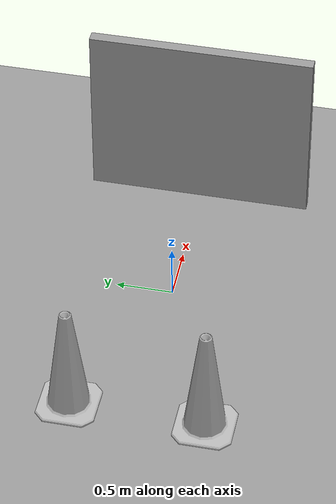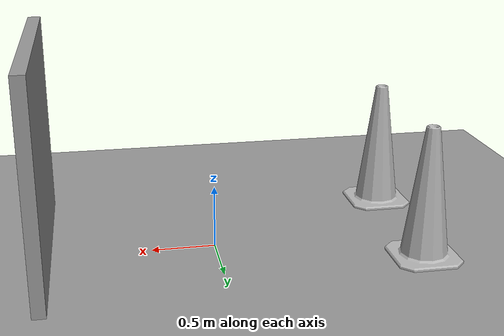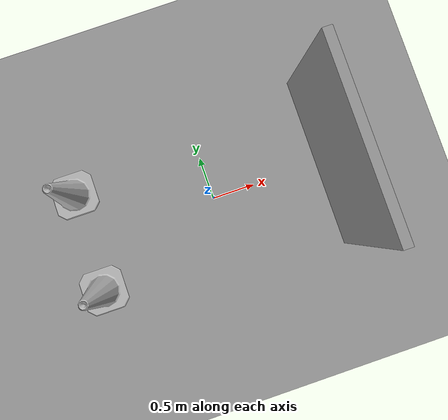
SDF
<sdf version="1.7">
 <world name="default">
  <light name="sun" type="directional">
   <pose>0 0 10 0 -0 0</pose>
   <diffuse>0.8 0.8 0.8 1</diffuse>
   <specular>0.2 0.2 0.2 1</specular>
   <attenuation>
    <range>1000</range>
    <constant>0.9</constant>
    <linear>0.01</linear>
    <quadratic>0.001</quadratic>
   </attenuation>
   <direction>-0.5 0.1 -0.9</direction>
   <spot><inner_angle>0</inner_angle><outer_angle>0</outer_angle><falloff>0</falloff></spot>
  </light>
  <model name="ground_plane">
   <static>1</static>
   <link name="link">
    <collision name="collision">
     <geometry><plane><normal>0 0 1</normal><size>100 100</size></plane></geometry>
     <surface><friction><ode><mu>100</mu><mu2>50</mu2></ode></friction></surface>
    </collision>
    <visual name="visual">
     <cast_shadows>0</cast_shadows>
     <geometry><plane><normal>0 0 1</normal><size>100 100</size></plane></geometry>
     <material>
      <script><uri>file://media/materials/scripts/gazebo.material</uri><name>Gazebo/Grey</name></script>
     </material>
    </visual>
   </link>
  </model>
  <gravity>0 0 -9.8</gravity>
  <magnetic_field>6e-06 2.3e-05 -4.2e-05</magnetic_field>
  <atmosphere type="adiabatic"/>
  <physics type="ode">
   <max_step_size>0.001</max_step_size>
   <real_time_factor>1</real_time_factor>
   <real_time_update_rate>1000</real_time_update_rate>
  </physics>
  <scene><ambient>0.4 0.4 0.4 1</ambient><background>0.7 0.7 0.7 1</background><shadows>1</shadows></scene>
  <audio><device>default</device></audio>
  <spherical_coordinates>
   <surface_model>EARTH_WGS84</surface_model>
   <latitude_deg>0</latitude_deg>
   <longitude_deg>0</longitude_deg>
   <elevation>0</elevation>
   <heading_deg>0</heading_deg>
  </spherical_coordinates>
  <model name="ground_plane_0">
   <static>1</static>
   <link name="link">
    <collision name="collision">
     <geometry><plane><normal>0 0 1</normal><size>100 100</size></plane></geometry>
     <surface><friction><ode><mu>100</mu><mu2>50</mu2></ode></friction></surface>
    </collision>
    <visual name="visual">
     <cast_shadows>0</cast_shadows>
     <geometry><plane><normal>0 0 1</normal><size>100 100</size></plane></geometry>
     <material>
      <script><uri>file://media/materials/scripts/gazebo.material</uri><name>Gazebo/Grey</name></script>
     </material>
    </visual>
   </link>
  </model>
  <model name="Construction Cone">
   <link name="link">
    <collision name="collision">
     <geometry>
      <mesh><scale>10 10 10</scale><uri>model://construction_cone/meshes/construction_cone.dae</uri></mesh>
     </geometry>
    </collision>
    <visual name="visual">
     <geometry>
      <mesh><scale>10 10 10</scale><uri>model://construction_cone/meshes/construction_cone.dae</uri></mesh>
     </geometry>
    </visual>
    <inertial>
     <inertia><ixx>1</ixx><ixy>0</ixy><ixz>0</ixz><iyy>1</iyy><iyz>0</iyz><izz>1</izz></inertia>
     <mass>1</mass>
    </inertial>
   </link>
   <pose>-1.54472 -0.602132 0 0 -0 0</pose>
  </model>
  <model name="Construction Cone_0">
   <link name="link">
    <collision name="collision">
     <geometry>
      <mesh><scale>10 10 10</scale><uri>model://construction_cone/meshes/construction_cone.dae</uri></mesh>
     </geometry>
    </collision>
    <visual name="visual">
     <geometry>
      <mesh><scale>10 10 10</scale><uri>model://construction_cone/meshes/construction_cone.dae</uri></mesh>
     </geometry>
    </visual>
    <inertial>
     <inertia><ixx>1</ixx><ixy>0</ixy><ixz>0</ixz><iyy>1</iyy><iyz>0</iyz><izz>1</izz></inertia>
     <mass>1</mass>
    </inertial>
   </link>
   <pose>-1.52825 0.562633 0 0 -0 0</pose>
  </model>
  <model name="Fake_whiteBoard">
   <link name="link_3">
    <inertial>
     <mass>1</mass>
     <inertia>
      <ixx>0.166667</ixx>
      <ixy>0</ixy>
      <ixz>0</ixz>
      <iyy>0.166667</iyy>
      <iyz>0</iyz>
      <izz>0.166667</izz>
     </inertia>
    </inertial>
    <gravity>0</gravity>
    <visual name="visual">
     <pose>2.3 1 0.85 0 -0 0</pose>
     <geometry><box><size>0.1 2 1.7</size></box></geometry>
     <material>
      <lighting>1</lighting>
      <script><uri>file://media/materials/scripts/gazebo.material</uri><name>Gazebo/Grey</name></script>
      <shader type="pixel"><normal_map>__default__</normal_map></shader>
      <ambient>1 1 1 1</ambient>
      <diffuse>0.7 0.7 0.7 1</diffuse>
      <specular>0.01 0.01 0.01 1</specular>
      <emissive>0 0 0 1</emissive>
     </material>
    </visual>
    <collision name="collision">
     <geometry><box><size>1 1 1</size></box></geometry>
     <surface>
      <friction>
       <ode><mu>1</mu><mu2>1</mu2><fdir1>0 0 0</fdir1><slip1>0</slip1><slip2>0</slip2></ode>
       <torsional>
        <coefficient>1</coefficient>
        <patch_radius>0</patch_radius>
        <surface_radius>0</surface_radius>
        <use_patch_radius>1</use_patch_radius>
        <ode><slip>0</slip></ode>
       </torsional>
      </friction>
      <bounce><restitution_coefficient>0</restitution_coefficient><threshold>1e+06</threshold></bounce>
      <contact>
       <collide_without_contact>0</collide_without_contact>
       <collide_without_contact_bitmask>1</collide_without_contact_bitmask>
       <collide_bitmask>1</collide_bitmask>
       <ode>
        <soft_cfm>0</soft_cfm>
        <soft_erp>0.2</soft_erp>
        <kp>1e+13</kp>
        <kd>1</kd>
        <max_vel>0.01</max_vel>
        <min_depth>0</min_depth>
       </ode>
       <bullet>
        <split_impulse>1</split_impulse>
        <split_impulse_penetration_threshold>-0.01</split_impulse_penetration_threshold>
        <soft_cfm>0</soft_cfm>
        <soft_erp>0.2</soft_erp>
        <kp>1e+13</kp>
        <kd>1</kd>
       </bullet>
      </contact>
     </surface>
    </collision>
   </link>
   <static>1</static>
   <pose>-0.976025 -0.986334 0 0 -0 0</pose>
  </model>
 </world>
</sdf>
